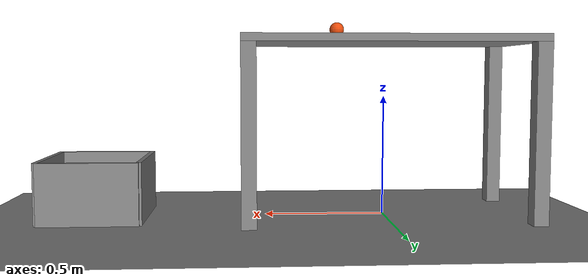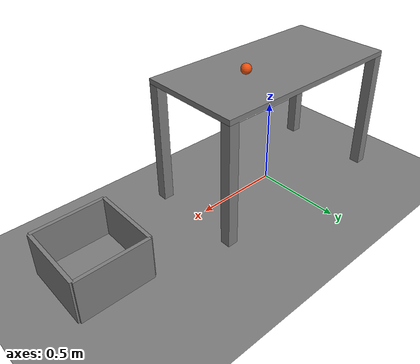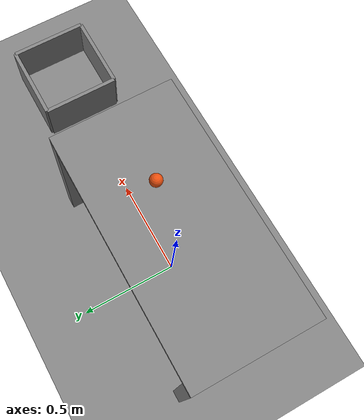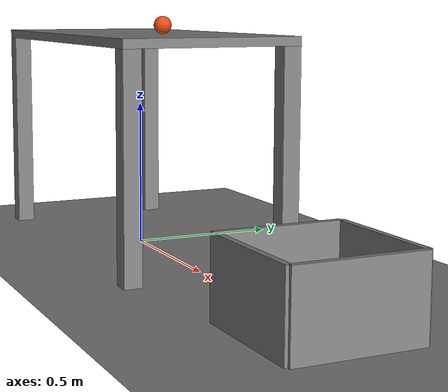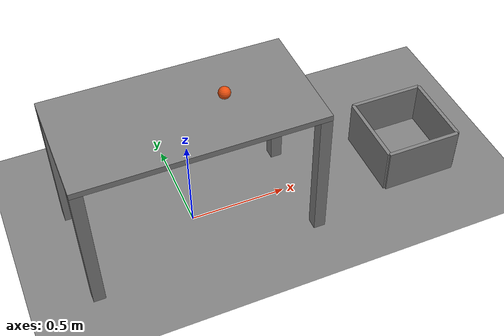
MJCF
<mujoco model="roll_off_the_table_into_a_bucket">
  <compiler angle="radian"/>
  <option timestep="0.002"/>
  <worldbody>
    <geom name="floor" type="plane" size="8 8 0.1" friction="0.8 0.005 0.002"/>
    <body name="table">
      <geom name="table_top" type="box" pos="0 0 0.735" size="0.6 0.3 0.015"/>
      <geom name="table_near_left_leg" type="box" pos="-0.57 0.27 0.36" size="0.03 0.03 0.36"/>
      <geom name="table_near_right_leg" type="box" pos="-0.57 -0.27 0.36" size="0.03 0.03 0.36"/>
      <geom name="table_far_left_leg" type="box" pos="0.57 0.27 0.36" size="0.03 0.03 0.36"/>
      <geom name="table_far_right_leg" type="box" pos="0.57 -0.27 0.36" size="0.03 0.03 0.36"/>
    </body>
    <body name="bucket">
      <geom name="bucket_base" type="box" pos="1.2 0 0.01" size="0.2 0.2 0.01"/>
      <geom name="bucket_near_wall" type="box" pos="1 0 0.125" size="0.01 0.2 0.125"/>
      <geom name="bucket_far_wall" type="box" pos="1.4 0 0.125" size="0.01 0.2 0.125"/>
      <geom name="bucket_left_wall" type="box" pos="1.2 0.2 0.125" size="0.2 0.01 0.125"/>
      <geom name="bucket_right_wall" type="box" pos="1.2 -0.2 0.125" size="0.2 0.01 0.125"/>
    </body>
    <body name="ball" pos="0.2 0 0.78">
      <freejoint/>
      <geom name="ball" type="sphere" pos="0 0 0" size="0.03" mass="0.1" condim="6" friction="0.8 0.005 0.0005" solref="0.01 1" rgba="0.9 0.3 0.05 1"/>
    </body>
  </worldbody>
  <keyframe>
    <key name="start" qpos="0.2 0 0.78 1 0 0 0" qvel="1.55 0 0 0 51.7 0"/>
  </keyframe>
</mujoco>
